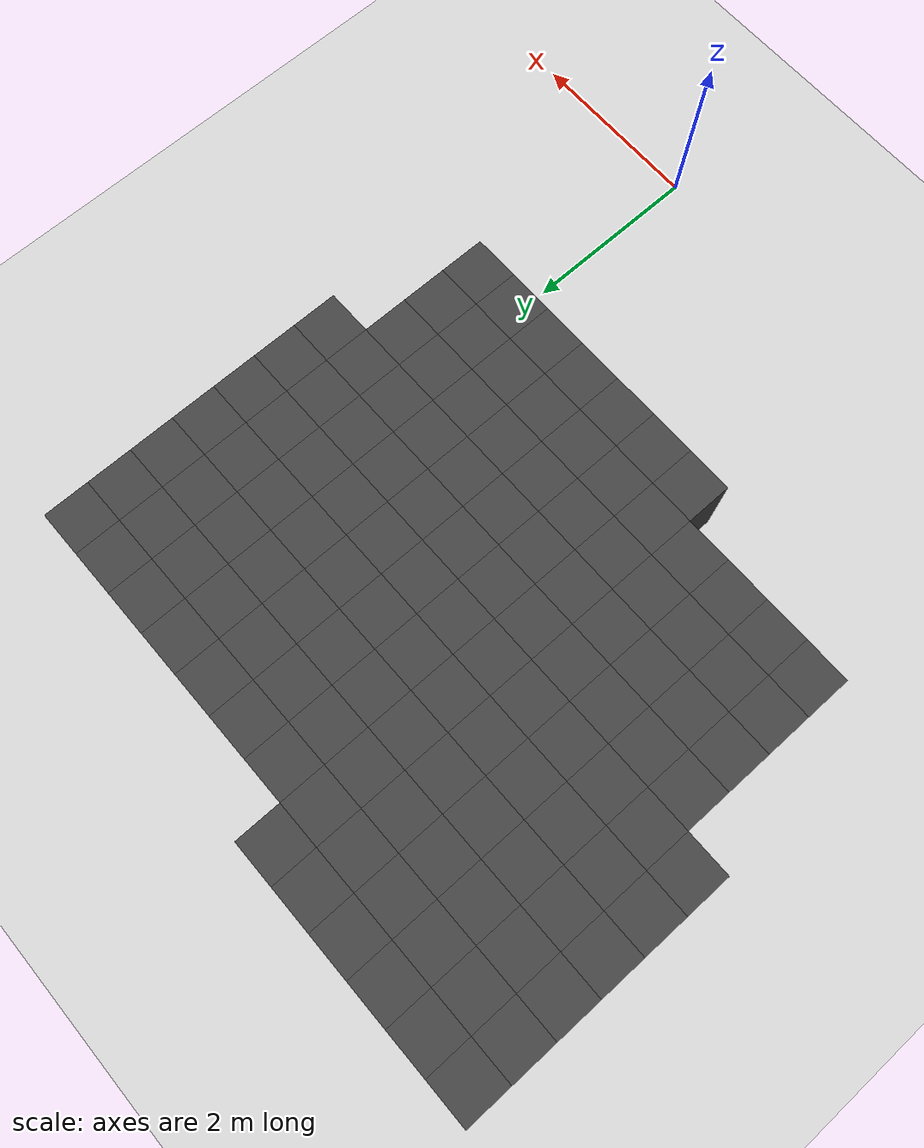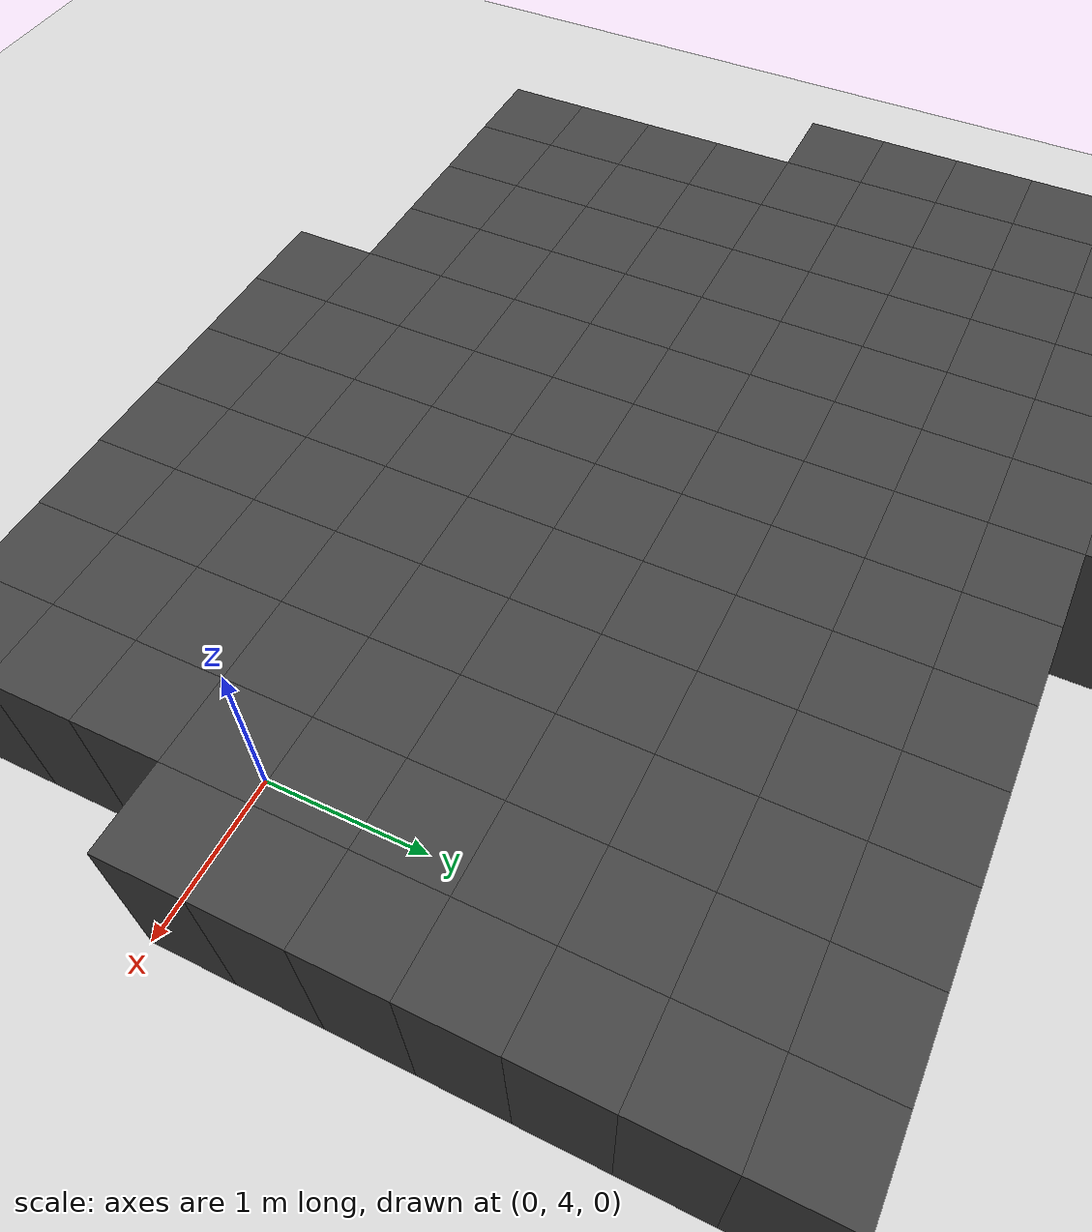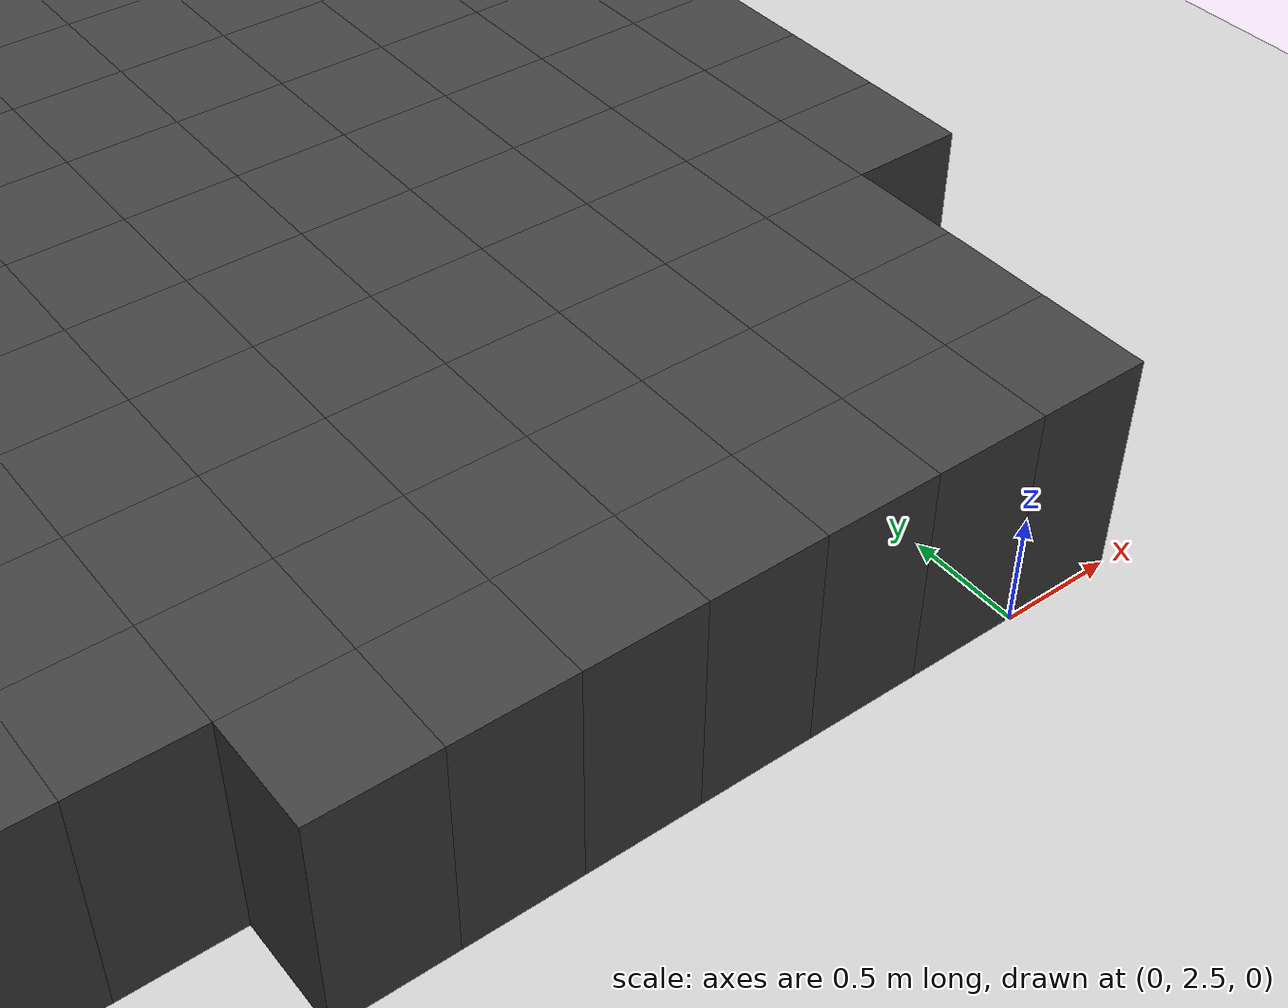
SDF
<sdf version="1.7">
 <world name="map_12818">
  <model name="ground_plane">
   <static>true</static>
   <link name="link">
    <collision name="collision">
     <geometry><plane><normal>0 0 1</normal><size>200 200</size></plane></geometry>
    </collision>
    <visual name="visual">
     <geometry><plane><normal>0 0 1</normal><size>200 200</size></plane></geometry>
     <material><ambient>0.8 0.8 0.8 1</ambient><diffuse>0.8 0.8 0.8 1</diffuse></material>
    </visual>
   </link>
  </model>
  <model name="maze_environment">
   <static>true</static>
   <link name="wall_441">
    <pose>-5.250 7.750 0.500 0 0 0</pose>
    <collision name="col"><geometry><box><size>0.5 0.5 1.0</size></box></geometry></collision>
    <visual name="vis">
     <geometry><box><size>0.5 0.5 1.0</size></box></geometry>
     <material><ambient>0.15 0.15 0.15 1</ambient><diffuse>0.25 0.25 0.25 1</diffuse></material>
    </visual>
   </link>
   <link name="wall_442">
    <pose>-4.750 7.750 0.500 0 0 0</pose>
    <collision name="col"><geometry><box><size>0.5 0.5 1.0</size></box></geometry></collision>
    <visual name="vis">
     <geometry><box><size>0.5 0.5 1.0</size></box></geometry>
     <material><ambient>0.15 0.15 0.15 1</ambient><diffuse>0.25 0.25 0.25 1</diffuse></material>
    </visual>
   </link>
   <link name="wall_443">
    <pose>-4.250 7.750 0.500 0 0 0</pose>
    <collision name="col"><geometry><box><size>0.5 0.5 1.0</size></box></geometry></collision>
    <visual name="vis">
     <geometry><box><size>0.5 0.5 1.0</size></box></geometry>
     <material><ambient>0.15 0.15 0.15 1</ambient><diffuse>0.25 0.25 0.25 1</diffuse></material>
    </visual>
   </link>
   <link name="wall_444">
    <pose>-3.750 7.750 0.500 0 0 0</pose>
    <collision name="col"><geometry><box><size>0.5 0.5 1.0</size></box></geometry></collision>
    <visual name="vis">
     <geometry><box><size>0.5 0.5 1.0</size></box></geometry>
     <material><ambient>0.15 0.15 0.15 1</ambient><diffuse>0.25 0.25 0.25 1</diffuse></material>
    </visual>
   </link>
   <link name="wall_445">
    <pose>-3.250 7.750 0.500 0 0 0</pose>
    <collision name="col"><geometry><box><size>0.5 0.5 1.0</size></box></geometry></collision>
    <visual name="vis">
     <geometry><box><size>0.5 0.5 1.0</size></box></geometry>
     <material><ambient>0.15 0.15 0.15 1</ambient><diffuse>0.25 0.25 0.25 1</diffuse></material>
    </visual>
   </link>
   <link name="wall_446">
    <pose>-2.750 7.750 0.500 0 0 0</pose>
    <collision name="col"><geometry><box><size>0.5 0.5 1.0</size></box></geometry></collision>
    <visual name="vis">
     <geometry><box><size>0.5 0.5 1.0</size></box></geometry>
     <material><ambient>0.15 0.15 0.15 1</ambient><diffuse>0.25 0.25 0.25 1</diffuse></material>
    </visual>
   </link>
   <link name="wall_482">
    <pose>-5.250 7.250 0.500 0 0 0</pose>
    <collision name="col"><geometry><box><size>0.5 0.5 1.0</size></box></geometry></collision>
    <visual name="vis">
     <geometry><box><size>0.5 0.5 1.0</size></box></geometry>
     <material><ambient>0.15 0.15 0.15 1</ambient><diffuse>0.25 0.25 0.25 1</diffuse></material>
    </visual>
   </link>
   <link name="wall_483">
    <pose>-4.750 7.250 0.500 0 0 0</pose>
    <collision name="col"><geometry><box><size>0.5 0.5 1.0</size></box></geometry></collision>
    <visual name="vis">
     <geometry><box><size>0.5 0.5 1.0</size></box></geometry>
     <material><ambient>0.15 0.15 0.15 1</ambient><diffuse>0.25 0.25 0.25 1</diffuse></material>
    </visual>
   </link>
   <link name="wall_484">
    <pose>-4.250 7.250 0.500 0 0 0</pose>
    <collision name="col"><geometry><box><size>0.5 0.5 1.0</size></box></geometry></collision>
    <visual name="vis">
     <geometry><box><size>0.5 0.5 1.0</size></box></geometry>
     <material><ambient>0.15 0.15 0.15 1</ambient><diffuse>0.25 0.25 0.25 1</diffuse></material>
    </visual>
   </link>
   <link name="wall_485">
    <pose>-3.750 7.250 0.500 0 0 0</pose>
    <collision name="col"><geometry><box><size>0.5 0.5 1.0</size></box></geometry></collision>
    <visual name="vis">
     <geometry><box><size>0.5 0.5 1.0</size></box></geometry>
     <material><ambient>0.15 0.15 0.15 1</ambient><diffuse>0.25 0.25 0.25 1</diffuse></material>
    </visual>
   </link>
   <link name="wall_486">
    <pose>-3.250 7.250 0.500 0 0 0</pose>
    <collision name="col"><geometry><box><size>0.5 0.5 1.0</size></box></geometry></collision>
    <visual name="vis">
     <geometry><box><size>0.5 0.5 1.0</size></box></geometry>
     <material><ambient>0.15 0.15 0.15 1</ambient><diffuse>0.25 0.25 0.25 1</diffuse></material>
    </visual>
   </link>
   <link name="wall_487">
    <pose>-2.750 7.250 0.500 0 0 0</pose>
    <collision name="col"><geometry><box><size>0.5 0.5 1.0</size></box></geometry></collision>
    <visual name="vis">
     <geometry><box><size>0.5 0.5 1.0</size></box></geometry>
     <material><ambient>0.15 0.15 0.15 1</ambient><diffuse>0.25 0.25 0.25 1</diffuse></material>
    </visual>
   </link>
   <link name="wall_488">
    <pose>-2.250 7.250 0.500 0 0 0</pose>
    <collision name="col"><geometry><box><size>0.5 0.5 1.0</size></box></geometry></collision>
    <visual name="vis">
     <geometry><box><size>0.5 0.5 1.0</size></box></geometry>
     <material><ambient>0.15 0.15 0.15 1</ambient><diffuse>0.25 0.25 0.25 1</diffuse></material>
    </visual>
   </link>
   <link name="wall_489">
    <pose>-1.750 7.250 0.500 0 0 0</pose>
    <collision name="col"><geometry><box><size>0.5 0.5 1.0</size></box></geometry></collision>
    <visual name="vis">
     <geometry><box><size>0.5 0.5 1.0</size></box></geometry>
     <material><ambient>0.15 0.15 0.15 1</ambient><diffuse>0.25 0.25 0.25 1</diffuse></material>
    </visual>
   </link>
   <link name="wall_490">
    <pose>-1.250 7.250 0.500 0 0 0</pose>
    <collision name="col"><geometry><box><size>0.5 0.5 1.0</size></box></geometry></collision>
    <visual name="vis">
     <geometry><box><size>0.5 0.5 1.0</size></box></geometry>
     <material><ambient>0.15 0.15 0.15 1</ambient><diffuse>0.25 0.25 0.25 1</diffuse></material>
    </visual>
   </link>
   <link name="wall_491">
    <pose>-0.750 7.250 0.500 0 0 0</pose>
    <collision name="col"><geometry><box><size>0.5 0.5 1.0</size></box></geometry></collision>
    <visual name="vis">
     <geometry><box><size>0.5 0.5 1.0</size></box></geometry>
     <material><ambient>0.15 0.15 0.15 1</ambient><diffuse>0.25 0.25 0.25 1</diffuse></material>
    </visual>
   </link>
   <link name="wall_492">
    <pose>-0.250 7.250 0.500 0 0 0</pose>
    <collision name="col"><geometry><box><size>0.5 0.5 1.0</size></box></geometry></collision>
    <visual name="vis">
     <geometry><box><size>0.5 0.5 1.0</size></box></geometry>
     <material><ambient>0.15 0.15 0.15 1</ambient><diffuse>0.25 0.25 0.25 1</diffuse></material>
    </visual>
   </link>
   <link name="wall_493">
    <pose>0.250 7.250 0.500 0 0 0</pose>
    <collision name="col"><geometry><box><size>0.5 0.5 1.0</size></box></geometry></collision>
    <visual name="vis">
     <geometry><box><size>0.5 0.5 1.0</size></box></geometry>
     <material><ambient>0.15 0.15 0.15 1</ambient><diffuse>0.25 0.25 0.25 1</diffuse></material>
    </visual>
   </link>
   <link name="wall_494">
    <pose>0.750 7.250 0.500 0 0 0</pose>
    <collision name="col"><geometry><box><size>0.5 0.5 1.0</size></box></geometry></collision>
    <visual name="vis">
     <geometry><box><size>0.5 0.5 1.0</size></box></geometry>
     <material><ambient>0.15 0.15 0.15 1</ambient><diffuse>0.25 0.25 0.25 1</diffuse></material>
    </visual>
   </link>
   <link name="wall_526">
    <pose>-5.250 6.750 0.500 0 0 0</pose>
    <collision name="col"><geometry><box><size>0.5 0.5 1.0</size></box></geometry></collision>
    <visual name="vis">
     <geometry><box><size>0.5 0.5 1.0</size></box></geometry>
     <material><ambient>0.15 0.15 0.15 1</ambient><diffuse>0.25 0.25 0.25 1</diffuse></material>
    </visual>
   </link>
   <link name="wall_527">
    <pose>-4.750 6.750 0.500 0 0 0</pose>
    <collision name="col"><geometry><box><size>0.5 0.5 1.0</size></box></geometry></collision>
    <visual name="vis">
     <geometry><box><size>0.5 0.5 1.0</size></box></geometry>
     <material><ambient>0.15 0.15 0.15 1</ambient><diffuse>0.25 0.25 0.25 1</diffuse></material>
    </visual>
   </link>
   <link name="wall_528">
    <pose>-4.250 6.750 0.500 0 0 0</pose>
    <collision name="col"><geometry><box><size>0.5 0.5 1.0</size></box></geometry></collision>
    <visual name="vis">
     <geometry><box><size>0.5 0.5 1.0</size></box></geometry>
     <material><ambient>0.15 0.15 0.15 1</ambient><diffuse>0.25 0.25 0.25 1</diffuse></material>
    </visual>
   </link>
   <link name="wall_529">
    <pose>-3.750 6.750 0.500 0 0 0</pose>
    <collision name="col"><geometry><box><size>0.5 0.5 1.0</size></box></geometry></collision>
    <visual name="vis">
     <geometry><box><size>0.5 0.5 1.0</size></box></geometry>
     <material><ambient>0.15 0.15 0.15 1</ambient><diffuse>0.25 0.25 0.25 1</diffuse></material>
    </visual>
   </link>
   <link name="wall_530">
    <pose>-3.250 6.750 0.500 0 0 0</pose>
    <collision name="col"><geometry><box><size>0.5 0.5 1.0</size></box></geometry></collision>
    <visual name="vis">
     <geometry><box><size>0.5 0.5 1.0</size></box></geometry>
     <material><ambient>0.15 0.15 0.15 1</ambient><diffuse>0.25 0.25 0.25 1</diffuse></material>
    </visual>
   </link>
   <link name="wall_531">
    <pose>-2.750 6.750 0.500 0 0 0</pose>
    <collision name="col"><geometry><box><size>0.5 0.5 1.0</size></box></geometry></collision>
    <visual name="vis">
     <geometry><box><size>0.5 0.5 1.0</size></box></geometry>
     <material><ambient>0.15 0.15 0.15 1</ambient><diffuse>0.25 0.25 0.25 1</diffuse></material>
    </visual>
   </link>
   <link name="wall_532">
    <pose>-2.250 6.750 0.500 0 0 0</pose>
    <collision name="col"><geometry><box><size>0.5 0.5 1.0</size></box></geometry></collision>
    <visual name="vis">
     <geometry><box><size>0.5 0.5 1.0</size></box></geometry>
     <material><ambient>0.15 0.15 0.15 1</ambient><diffuse>0.25 0.25 0.25 1</diffuse></material>
    </visual>
   </link>
   <link name="wall_533">
    <pose>-1.750 6.750 0.500 0 0 0</pose>
    <collision name="col"><geometry><box><size>0.5 0.5 1.0</size></box></geometry></collision>
    <visual name="vis">
     <geometry><box><size>0.5 0.5 1.0</size></box></geometry>
     <material><ambient>0.15 0.15 0.15 1</ambient><diffuse>0.25 0.25 0.25 1</diffuse></material>
    </visual>
   </link>
   <link name="wall_534">
    <pose>-1.250 6.750 0.500 0 0 0</pose>
    <collision name="col"><geometry><box><size>0.5 0.5 1.0</size></box></geometry></collision>
    <visual name="vis">
     <geometry><box><size>0.5 0.5 1.0</size></box></geometry>
     <material><ambient>0.15 0.15 0.15 1</ambient><diffuse>0.25 0.25 0.25 1</diffuse></material>
    </visual>
   </link>
   <link name="wall_535">
    <pose>-0.750 6.750 0.500 0 0 0</pose>
    <collision name="col"><geometry><box><size>0.5 0.5 1.0</size></box></geometry></collision>
    <visual name="vis">
     <geometry><box><size>0.5 0.5 1.0</size></box></geometry>
     <material><ambient>0.15 0.15 0.15 1</ambient><diffuse>0.25 0.25 0.25 1</diffuse></material>
    </visual>
   </link>
   <link name="wall_536">
    <pose>-0.250 6.750 0.500 0 0 0</pose>
    <collision name="col"><geometry><box><size>0.5 0.5 1.0</size></box></geometry></collision>
    <visual name="vis">
     <geometry><box><size>0.5 0.5 1.0</size></box></geometry>
     <material><ambient>0.15 0.15 0.15 1</ambient><diffuse>0.25 0.25 0.25 1</diffuse></material>
    </visual>
   </link>
   <link name="wall_537">
    <pose>0.250 6.750 0.500 0 0 0</pose>
    <collision name="col"><geometry><box><size>0.5 0.5 1.0</size></box></geometry></collision>
    <visual name="vis">
     <geometry><box><size>0.5 0.5 1.0</size></box></geometry>
     <material><ambient>0.15 0.15 0.15 1</ambient><diffuse>0.25 0.25 0.25 1</diffuse></material>
    </visual>
   </link>
   <link name="wall_538">
    <pose>0.750 6.750 0.500 0 0 0</pose>
    <collision name="col"><geometry><box><size>0.5 0.5 1.0</size></box></geometry></collision>
    <visual name="vis">
     <geometry><box><size>0.5 0.5 1.0</size></box></geometry>
     <material><ambient>0.15 0.15 0.15 1</ambient><diffuse>0.25 0.25 0.25 1</diffuse></material>
    </visual>
   </link>
   <link name="wall_574">
    <pose>-5.250 6.250 0.500 0 0 0</pose>
    <collision name="col"><geometry><box><size>0.5 0.5 1.0</size></box></geometry></collision>
    <visual name="vis">
     <geometry><box><size>0.5 0.5 1.0</size></box></geometry>
     <material><ambient>0.15 0.15 0.15 1</ambient><diffuse>0.25 0.25 0.25 1</diffuse></material>
    </visual>
   </link>
   <link name="wall_575">
    <pose>-4.750 6.250 0.500 0 0 0</pose>
    <collision name="col"><geometry><box><size>0.5 0.5 1.0</size></box></geometry></collision>
    <visual name="vis">
     <geometry><box><size>0.5 0.5 1.0</size></box></geometry>
     <material><ambient>0.15 0.15 0.15 1</ambient><diffuse>0.25 0.25 0.25 1</diffuse></material>
    </visual>
   </link>
   <link name="wall_576">
    <pose>-4.250 6.250 0.500 0 0 0</pose>
    <collision name="col"><geometry><box><size>0.5 0.5 1.0</size></box></geometry></collision>
    <visual name="vis">
     <geometry><box><size>0.5 0.5 1.0</size></box></geometry>
     <material><ambient>0.15 0.15 0.15 1</ambient><diffuse>0.25 0.25 0.25 1</diffuse></material>
    </visual>
   </link>
   <link name="wall_577">
    <pose>-3.750 6.250 0.500 0 0 0</pose>
    <collision name="col"><geometry><box><size>0.5 0.5 1.0</size></box></geometry></collision>
    <visual name="vis">
     <geometry><box><size>0.5 0.5 1.0</size></box></geometry>
     <material><ambient>0.15 0.15 0.15 1</ambient><diffuse>0.25 0.25 0.25 1</diffuse></material>
    </visual>
   </link>
   <link name="wall_578">
    <pose>-3.250 6.250 0.500 0 0 0</pose>
    <collision name="col"><geometry><box><size>0.5 0.5 1.0</size></box></geometry></collision>
    <visual name="vis">
     <geometry><box><size>0.5 0.5 1.0</size></box></geometry>
     <material><ambient>0.15 0.15 0.15 1</ambient><diffuse>0.25 0.25 0.25 1</diffuse></material>
    </visual>
   </link>
   <link name="wall_579">
    <pose>-2.750 6.250 0.500 0 0 0</pose>
    <collision name="col"><geometry><box><size>0.5 0.5 1.0</size></box></geometry></collision>
    <visual name="vis">
     <geometry><box><size>0.5 0.5 1.0</size></box></geometry>
     <material><ambient>0.15 0.15 0.15 1</ambient><diffuse>0.25 0.25 0.25 1</diffuse></material>
    </visual>
   </link>
   <link name="wall_580">
    <pose>-2.250 6.250 0.500 0 0 0</pose>
    <collision name="col"><geometry><box><size>0.5 0.5 1.0</size></box></geometry></collision>
    <visual name="vis">
     <geometry><box><size>0.5 0.5 1.0</size></box></geometry>
     <material><ambient>0.15 0.15 0.15 1</ambient><diffuse>0.25 0.25 0.25 1</diffuse></material>
    </visual>
   </link>
   <link name="wall_581">
    <pose>-1.750 6.250 0.500 0 0 0</pose>
    <collision name="col"><geometry><box><size>0.5 0.5 1.0</size></box></geometry></collision>
    <visual name="vis">
     <geometry><box><size>0.5 0.5 1.0</size></box></geometry>
     <material><ambient>0.15 0.15 0.15 1</ambient><diffuse>0.25 0.25 0.25 1</diffuse></material>
    </visual>
   </link>
   <link name="wall_582">
    <pose>-1.250 6.250 0.500 0 0 0</pose>
    <collision name="col"><geometry><box><size>0.5 0.5 1.0</size></box></geometry></collision>
    <visual name="vis">
     <geometry><box><size>0.5 0.5 1.0</size></box></geometry>
     <material><ambient>0.15 0.15 0.15 1</ambient><diffuse>0.25 0.25 0.25 1</diffuse></material>
    </visual>
   </link>
   <link name="wall_583">
    <pose>-0.750 6.250 0.500 0 0 0</pose>
    <collision name="col"><geometry><box><size>0.5 0.5 1.0</size></box></geometry></collision>
    <visual name="vis">
     <geometry><box><size>0.5 0.5 1.0</size></box></geometry>
     <material><ambient>0.15 0.15 0.15 1</ambient><diffuse>0.25 0.25 0.25 1</diffuse></material>
    </visual>
   </link>
   <link name="wall_584">
    <pose>-0.250 6.250 0.500 0 0 0</pose>
    <collision name="col"><geometry><box><size>0.5 0.5 1.0</size></box></geometry></collision>
    <visual name="vis">
     <geometry><box><size>0.5 0.5 1.0</size></box></geometry>
     <material><ambient>0.15 0.15 0.15 1</ambient><diffuse>0.25 0.25 0.25 1</diffuse></material>
    </visual>
   </link>
   <link name="wall_585">
    <pose>0.250 6.250 0.500 0 0 0</pose>
    <collision name="col"><geometry><box><size>0.5 0.5 1.0</size></box></geometry></collision>
    <visual name="vis">
     <geometry><box><size>0.5 0.5 1.0</size></box></geometry>
     <material><ambient>0.15 0.15 0.15 1</ambient><diffuse>0.25 0.25 0.25 1</diffuse></material>
    </visual>
   </link>
   <link name="wall_586">
    <pose>0.750 6.250 0.500 0 0 0</pose>
    <collision name="col"><geometry><box><size>0.5 0.5 1.0</size></box></geometry></collision>
    <visual name="vis">
     <geometry><box><size>0.5 0.5 1.0</size></box></geometry>
     <material><ambient>0.15 0.15 0.15 1</ambient><diffuse>0.25 0.25 0.25 1</diffuse></material>
    </visual>
   </link>
   <link name="wall_622">
    <pose>-5.250 5.750 0.500 0 0 0</pose>
    <collision name="col"><geometry><box><size>0.5 0.5 1.0</size></box></geometry></collision>
    <visual name="vis">
     <geometry><box><size>0.5 0.5 1.0</size></box></geometry>
     <material><ambient>0.15 0.15 0.15 1</ambient><diffuse>0.25 0.25 0.25 1</diffuse></material>
    </visual>
   </link>
   <link name="wall_623">
    <pose>-4.750 5.750 0.500 0 0 0</pose>
    <collision name="col"><geometry><box><size>0.5 0.5 1.0</size></box></geometry></collision>
    <visual name="vis">
     <geometry><box><size>0.5 0.5 1.0</size></box></geometry>
     <material><ambient>0.15 0.15 0.15 1</ambient><diffuse>0.25 0.25 0.25 1</diffuse></material>
    </visual>
   </link>
   <link name="wall_624">
    <pose>-4.250 5.750 0.500 0 0 0</pose>
    <collision name="col"><geometry><box><size>0.5 0.5 1.0</size></box></geometry></collision>
    <visual name="vis">
     <geometry><box><size>0.5 0.5 1.0</size></box></geometry>
     <material><ambient>0.15 0.15 0.15 1</ambient><diffuse>0.25 0.25 0.25 1</diffuse></material>
    </visual>
   </link>
   <link name="wall_625">
    <pose>-3.750 5.750 0.500 0 0 0</pose>
    <collision name="col"><geometry><box><size>0.5 0.5 1.0</size></box></geometry></collision>
    <visual name="vis">
     <geometry><box><size>0.5 0.5 1.0</size></box></geometry>
     <material><ambient>0.15 0.15 0.15 1</ambient><diffuse>0.25 0.25 0.25 1</diffuse></material>
    </visual>
   </link>
   <link name="wall_626">
    <pose>-3.250 5.750 0.500 0 0 0</pose>
    <collision name="col"><geometry><box><size>0.5 0.5 1.0</size></box></geometry></collision>
    <visual name="vis">
     <geometry><box><size>0.5 0.5 1.0</size></box></geometry>
     <material><ambient>0.15 0.15 0.15 1</ambient><diffuse>0.25 0.25 0.25 1</diffuse></material>
    </visual>
   </link>
   <link name="wall_627">
    <pose>-2.750 5.750 0.500 0 0 0</pose>
    <collision name="col"><geometry><box><size>0.5 0.5 1.0</size></box></geometry></collision>
    <visual name="vis">
     <geometry><box><size>0.5 0.5 1.0</size></box></geometry>
     <material><ambient>0.15 0.15 0.15 1</ambient><diffuse>0.25 0.25 0.25 1</diffuse></material>
    </visual>
   </link>
   <link name="wall_628">
    <pose>-2.250 5.750 0.500 0 0 0</pose>
    <collision name="col"><geometry><box><size>0.5 0.5 1.0</size></box></geometry></collision>
    <visual name="vis">
     <geometry><box><size>0.5 0.5 1.0</size></box></geometry>
     <material><ambient>0.15 0.15 0.15 1</ambient><diffuse>0.25 0.25 0.25 1</diffuse></material>
    </visual>
   </link>
   <link name="wall_629">
    <pose>-1.750 5.750 0.500 0 0 0</pose>
    <collision name="col"><geometry><box><size>0.5 0.5 1.0</size></box></geometry></collision>
    <visual name="vis">
     <geometry><box><size>0.5 0.5 1.0</size></box></geometry>
     <material><ambient>0.15 0.15 0.15 1</ambient><diffuse>0.25 0.25 0.25 1</diffuse></material>
    </visual>
   </link>
   <link name="wall_630">
    <pose>-1.250 5.750 0.500 0 0 0</pose>
    <collision name="col"><geometry><box><size>0.5 0.5 1.0</size></box></geometry></collision>
    <visual name="vis">
     <geometry><box><size>0.5 0.5 1.0</size></box></geometry>
     <material><ambient>0.15 0.15 0.15 1</ambient><diffuse>0.25 0.25 0.25 1</diffuse></material>
    </visual>
   </link>
   <link name="wall_631">
    <pose>-0.750 5.750 0.500 0 0 0</pose>
    <collision name="col"><geometry><box><size>0.5 0.5 1.0</size></box></geometry></collision>
    <visual name="vis">
     <geometry><box><size>0.5 0.5 1.0</size></box></geometry>
     <material><ambient>0.15 0.15 0.15 1</ambient><diffuse>0.25 0.25 0.25 1</diffuse></material>
    </visual>
   </link>
   <link name="wall_632">
    <pose>-0.250 5.750 0.500 0 0 0</pose>
    <collision name="col"><geometry><box><size>0.5 0.5 1.0</size></box></geometry></collision>
    <visual name="vis">
     <geometry><box><size>0.5 0.5 1.0</size></box></geometry>
     <material><ambient>0.15 0.15 0.15 1</ambient><diffuse>0.25 0.25 0.25 1</diffuse></material>
    </visual>
   </link>
   <link name="wall_633">
    <pose>0.250 5.750 0.500 0 0 0</pose>
    <collision name="col"><geometry><box><size>0.5 0.5 1.0</size></box></geometry></collision>
    <visual name="vis">
     <geometry><box><size>0.5 0.5 1.0</size></box></geometry>
     <material><ambient>0.15 0.15 0.15 1</ambient><diffuse>0.25 0.25 0.25 1</diffuse></material>
    </visual>
   </link>
   <link name="wall_634">
    <pose>0.750 5.750 0.500 0 0 0</pose>
    <collision name="col"><geometry><box><size>0.5 0.5 1.0</size></box></geometry></collision>
    <visual name="vis">
     <geometry><box><size>0.5 0.5 1.0</size></box></geometry>
     <material><ambient>0.15 0.15 0.15 1</ambient><diffuse>0.25 0.25 0.25 1</diffuse></material>
    </visual>
   </link>
   <link name="wall_670">
    <pose>-5.250 5.250 0.500 0 0 0</pose>
    <collision name="col"><geometry><box><size>0.5 0.5 1.0</size></box></geometry></collision>
    <visual name="vis">
     <geometry><box><size>0.5 0.5 1.0</size></box></geometry>
     <material><ambient>0.15 0.15 0.15 1</ambient><diffuse>0.25 0.25 0.25 1</diffuse></material>
    </visual>
   </link>
   <link name="wall_671">
    <pose>-4.750 5.250 0.500 0 0 0</pose>
    <collision name="col"><geometry><box><size>0.5 0.5 1.0</size></box></geometry></collision>
    <visual name="vis">
     <geometry><box><size>0.5 0.5 1.0</size></box></geometry>
     <material><ambient>0.15 0.15 0.15 1</ambient><diffuse>0.25 0.25 0.25 1</diffuse></material>
    </visual>
   </link>
   <link name="wall_672">
    <pose>-4.250 5.250 0.500 0 0 0</pose>
    <collision name="col"><geometry><box><size>0.5 0.5 1.0</size></box></geometry></collision>
    <visual name="vis">
     <geometry><box><size>0.5 0.5 1.0</size></box></geometry>
     <material><ambient>0.15 0.15 0.15 1</ambient><diffuse>0.25 0.25 0.25 1</diffuse></material>
    </visual>
   </link>
   <link name="wall_673">
    <pose>-3.750 5.250 0.500 0 0 0</pose>
    <collision name="col"><geometry><box><size>0.5 0.5 1.0</size></box></geometry></collision>
    <visual name="vis">
     <geometry><box><size>0.5 0.5 1.0</size></box></geometry>
     <material><ambient>0.15 0.15 0.15 1</ambient><diffuse>0.25 0.25 0.25 1</diffuse></material>
    </visual>
   </link>
   <link name="wall_674">
    <pose>-3.250 5.250 0.500 0 0 0</pose>
    <collision name="col"><geometry><box><size>0.5 0.5 1.0</size></box></geometry></collision>
    <visual name="vis">
     <geometry><box><size>0.5 0.5 1.0</size></box></geometry>
     <material><ambient>0.15 0.15 0.15 1</ambient><diffuse>0.25 0.25 0.25 1</diffuse></material>
    </visual>
   </link>
   <link name="wall_675">
    <pose>-2.750 5.250 0.500 0 0 0</pose>
    <collision name="col"><geometry><box><size>0.5 0.5 1.0</size></box></geometry></collision>
    <visual name="vis">
     <geometry><box><size>0.5 0.5 1.0</size></box></geometry>
     <material><ambient>0.15 0.15 0.15 1</ambient><diffuse>0.25 0.25 0.25 1</diffuse></material>
    </visual>
   </link>
   <link name="wall_676">
    <pose>-2.250 5.250 0.500 0 0 0</pose>
    <collision name="col"><geometry><box><size>0.5 0.5 1.0</size></box></geometry></collision>
    <visual name="vis">
     <geometry><box><size>0.5 0.5 1.0</size></box></geometry>
     <material><ambient>0.15 0.15 0.15 1</ambient><diffuse>0.25 0.25 0.25 1</diffuse></material>
    </visual>
   </link>
   <link name="wall_677">
    <pose>-1.750 5.250 0.500 0 0 0</pose>
    <collision name="col"><geometry><box><size>0.5 0.5 1.0</size></box></geometry></collision>
    <visual name="vis">
     <geometry><box><size>0.5 0.5 1.0</size></box></geometry>
     <material><ambient>0.15 0.15 0.15 1</ambient><diffuse>0.25 0.25 0.25 1</diffuse></material>
    </visual>
   </link>
   <link name="wall_678">
    <pose>-1.250 5.250 0.500 0 0 0</pose>
    <collision name="col"><geometry><box><size>0.5 0.5 1.0</size></box></geometry></collision>
    <visual name="vis">
     <geometry><box><size>0.5 0.5 1.0</size></box></geometry>
     <material><ambient>0.15 0.15 0.15 1</ambient><diffuse>0.25 0.25 0.25 1</diffuse></material>
    </visual>
   </link>
   <link name="wall_679">
    <pose>-0.750 5.250 0.500 0 0 0</pose>
    <collision name="col"><geometry><box><size>0.5 0.5 1.0</size></box></geometry></collision>
    <visual name="vis">
     <geometry><box><size>0.5 0.5 1.0</size></box></geometry>
     <material><ambient>0.15 0.15 0.15 1</ambient><diffuse>0.25 0.25 0.25 1</diffuse></material>
    </visual>
   </link>
   <link name="wall_680">
    <pose>-0.250 5.250 0.500 0 0 0</pose>
    <collision name="col"><geometry><box><size>0.5 0.5 1.0</size></box></geometry></collision>
    <visual name="vis">
     <geometry><box><size>0.5 0.5 1.0</size></box></geometry>
     <material><ambient>0.15 0.15 0.15 1</ambient><diffuse>0.25 0.25 0.25 1</diffuse></material>
    </visual>
   </link>
   <link name="wall_681">
    <pose>0.250 5.250 0.500 0 0 0</pose>
    <collision name="col"><geometry><box><size>0.5 0.5 1.0</size></box></geometry></collision>
    <visual name="vis">
     <geometry><box><size>0.5 0.5 1.0</size></box></geometry>
     <material><ambient>0.15 0.15 0.15 1</ambient><diffuse>0.25 0.25 0.25 1</diffuse></material>
    </visual>
   </link>
   <link name="wall_682">
    <pose>0.750 5.250 0.500 0 0 0</pose>
    <collision name="col"><geometry><box><size>0.5 0.5 1.0</size></box></geometry></collision>
    <visual name="vis">
     <geometry><box><size>0.5 0.5 1.0</size></box></geometry>
     <material><ambient>0.15 0.15 0.15 1</ambient><diffuse>0.25 0.25 0.25 1</diffuse></material>
    </visual>
   </link>
   <link name="wall_719">
    <pose>-4.750 4.750 0.500 0 0 0</pose>
    <collision name="col"><geometry><box><size>0.5 0.5 1.0</size></box></geometry></collision>
    <visual name="vis">
     <geometry><box><size>0.5 0.5 1.0</size></box></geometry>
     <material><ambient>0.15 0.15 0.15 1</ambient><diffuse>0.25 0.25 0.25 1</diffuse></material>
    </visual>
   </link>
   <link name="wall_720">
    <pose>-4.250 4.750 0.500 0 0 0</pose>
    <collision name="col"><geometry><box><size>0.5 0.5 1.0</size></box></geometry></collision>
    <visual name="vis">
     <geometry><box><size>0.5 0.5 1.0</size></box></geometry>
     <material><ambient>0.15 0.15 0.15 1</ambient><diffuse>0.25 0.25 0.25 1</diffuse></material>
    </visual>
   </link>
   <link name="wall_721">
    <pose>-3.750 4.750 0.500 0 0 0</pose>
    <collision name="col"><geometry><box><size>0.5 0.5 1.0</size></box></geometry></collision>
    <visual name="vis">
     <geometry><box><size>0.5 0.5 1.0</size></box></geometry>
     <material><ambient>0.15 0.15 0.15 1</ambient><diffuse>0.25 0.25 0.25 1</diffuse></material>
    </visual>
   </link>
   <link name="wall_722">
    <pose>-3.250 4.750 0.500 0 0 0</pose>
    <collision name="col"><geometry><box><size>0.5 0.5 1.0</size></box></geometry></collision>
    <visual name="vis">
     <geometry><box><size>0.5 0.5 1.0</size></box></geometry>
     <material><ambient>0.15 0.15 0.15 1</ambient><diffuse>0.25 0.25 0.25 1</diffuse></material>
    </visual>
   </link>
   <link name="wall_723">
    <pose>-2.750 4.750 0.500 0 0 0</pose>
    <collision name="col"><geometry><box><size>0.5 0.5 1.0</size></box></geometry></collision>
    <visual name="vis">
     <geometry><box><size>0.5 0.5 1.0</size></box></geometry>
     <material><ambient>0.15 0.15 0.15 1</ambient><diffuse>0.25 0.25 0.25 1</diffuse></material>
    </visual>
   </link>
   <link name="wall_724">
    <pose>-2.250 4.750 0.500 0 0 0</pose>
    <collision name="col"><geometry><box><size>0.5 0.5 1.0</size></box></geometry></collision>
    <visual name="vis">
     <geometry><box><size>0.5 0.5 1.0</size></box></geometry>
     <material><ambient>0.15 0.15 0.15 1</ambient><diffuse>0.25 0.25 0.25 1</diffuse></material>
    </visual>
   </link>
   <link name="wall_725">
    <pose>-1.750 4.750 0.500 0 0 0</pose>
    <collision name="col"><geometry><box><size>0.5 0.5 1.0</size></box></geometry></collision>
    <visual name="vis">
     <geometry><box><size>0.5 0.5 1.0</size></box></geometry>
     <material><ambient>0.15 0.15 0.15 1</ambient><diffuse>0.25 0.25 0.25 1</diffuse></material>
    </visual>
   </link>
   <link name="wall_726">
    <pose>-1.250 4.750 0.500 0 0 0</pose>
    <collision name="col"><geometry><box><size>0.5 0.5 1.0</size></box></geometry></collision>
    <visual name="vis">
     <geometry><box><size>0.5 0.5 1.0</size></box></geometry>
     <material><ambient>0.15 0.15 0.15 1</ambient><diffuse>0.25 0.25 0.25 1</diffuse></material>
    </visual>
   </link>
   <link name="wall_727">
    <pose>-0.750 4.750 0.500 0 0 0</pose>
    <collision name="col"><geometry><box><size>0.5 0.5 1.0</size></box></geometry></collision>
    <visual name="vis">
     <geometry><box><size>0.5 0.5 1.0</size></box></geometry>
     <material><ambient>0.15 0.15 0.15 1</ambient><diffuse>0.25 0.25 0.25 1</diffuse></material>
    </visual>
   </link>
   <link name="wall_728">
    <pose>-0.250 4.750 0.500 0 0 0</pose>
    <collision name="col"><geometry><box><size>0.5 0.5 1.0</size></box></geometry></collision>
    <visual name="vis">
     <geometry><box><size>0.5 0.5 1.0</size></box></geometry>
     <material><ambient>0.15 0.15 0.15 1</ambient><diffuse>0.25 0.25 0.25 1</diffuse></material>
    </visual>
   </link>
   <link name="wall_729">
    <pose>0.250 4.750 0.500 0 0 0</pose>
    <collision name="col"><geometry><box><size>0.5 0.5 1.0</size></box></geometry></collision>
    <visual name="vis">
     <geometry><box><size>0.5 0.5 1.0</size></box></geometry>
     <material><ambient>0.15 0.15 0.15 1</ambient><diffuse>0.25 0.25 0.25 1</diffuse></material>
    </visual>
   </link>
   <link name="wall_730">
    <pose>0.750 4.750 0.500 0 0 0</pose>
    <collision name="col"><geometry><box><size>0.5 0.5 1.0</size></box></geometry></collision>
    <visual name="vis">
     <geometry><box><size>0.5 0.5 1.0</size></box></geometry>
     <material><ambient>0.15 0.15 0.15 1</ambient><diffuse>0.25 0.25 0.25 1</diffuse></material>
    </visual>
   </link>
   <link name="wall_767">
    <pose>-4.750 4.250 0.500 0 0 0</pose>
    <collision name="col"><geometry><box><size>0.5 0.5 1.0</size></box></geometry></collision>
    <visual name="vis">
     <geometry><box><size>0.5 0.5 1.0</size></box></geometry>
     <material><ambient>0.15 0.15 0.15 1</ambient><diffuse>0.25 0.25 0.25 1</diffuse></material>
    </visual>
   </link>
   <link name="wall_768">
    <pose>-4.250 4.250 0.500 0 0 0</pose>
    <collision name="col"><geometry><box><size>0.5 0.5 1.0</size></box></geometry></collision>
    <visual name="vis">
     <geometry><box><size>0.5 0.5 1.0</size></box></geometry>
     <material><ambient>0.15 0.15 0.15 1</ambient><diffuse>0.25 0.25 0.25 1</diffuse></material>
    </visual>
   </link>
   <link name="wall_769">
    <pose>-3.750 4.250 0.500 0 0 0</pose>
    <collision name="col"><geometry><box><size>0.5 0.5 1.0</size></box></geometry></collision>
    <visual name="vis">
     <geometry><box><size>0.5 0.5 1.0</size></box></geometry>
     <material><ambient>0.15 0.15 0.15 1</ambient><diffuse>0.25 0.25 0.25 1</diffuse></material>
    </visual>
   </link>
   <link name="wall_770">
    <pose>-3.250 4.250 0.500 0 0 0</pose>
    <collision name="col"><geometry><box><size>0.5 0.5 1.0</size></box></geometry></collision>
    <visual name="vis">
     <geometry><box><size>0.5 0.5 1.0</size></box></geometry>
     <material><ambient>0.15 0.15 0.15 1</ambient><diffuse>0.25 0.25 0.25 1</diffuse></material>
    </visual>
   </link>
   <link name="wall_771">
    <pose>-2.750 4.250 0.500 0 0 0</pose>
    <collision name="col"><geometry><box><size>0.5 0.5 1.0</size></box></geometry></collision>
    <visual name="vis">
     <geometry><box><size>0.5 0.5 1.0</size></box></geometry>
     <material><ambient>0.15 0.15 0.15 1</ambient><diffuse>0.25 0.25 0.25 1</diffuse></material>
    </visual>
   </link>
   <link name="wall_772">
    <pose>-2.250 4.250 0.500 0 0 0</pose>
    <collision name="col"><geometry><box><size>0.5 0.5 1.0</size></box></geometry></collision>
    <visual name="vis">
     <geometry><box><size>0.5 0.5 1.0</size></box></geometry>
     <material><ambient>0.15 0.15 0.15 1</ambient><diffuse>0.25 0.25 0.25 1</diffuse></material>
    </visual>
   </link>
   <link name="wall_773">
    <pose>-1.750 4.250 0.500 0 0 0</pose>
    <collision name="col"><geometry><box><size>0.5 0.5 1.0</size></box></geometry></collision>
    <visual name="vis">
     <geometry><box><size>0.5 0.5 1.0</size></box></geometry>
     <material><ambient>0.15 0.15 0.15 1</ambient><diffuse>0.25 0.25 0.25 1</diffuse></material>
    </visual>
   </link>
   <link name="wall_774">
    <pose>-1.250 4.250 0.500 0 0 0</pose>
    <collision name="col"><geometry><box><size>0.5 0.5 1.0</size></box></geometry></collision>
    <visual name="vis">
     <geometry><box><size>0.5 0.5 1.0</size></box></geometry>
     <material><ambient>0.15 0.15 0.15 1</ambient><diffuse>0.25 0.25 0.25 1</diffuse></material>
    </visual>
   </link>
   <link name="wall_775">
    <pose>-0.750 4.250 0.500 0 0 0</pose>
    <collision name="col"><geometry><box><size>0.5 0.5 1.0</size></box></geometry></collision>
    <visual name="vis">
     <geometry><box><size>0.5 0.5 1.0</size></box></geometry>
     <material><ambient>0.15 0.15 0.15 1</ambient><diffuse>0.25 0.25 0.25 1</diffuse></material>
    </visual>
   </link>
   <link name="wall_776">
    <pose>-0.250 4.250 0.500 0 0 0</pose>
    <collision name="col"><geometry><box><size>0.5 0.5 1.0</size></box></geometry></collision>
    <visual name="vis">
     <geometry><box><size>0.5 0.5 1.0</size></box></geometry>
     <material><ambient>0.15 0.15 0.15 1</ambient><diffuse>0.25 0.25 0.25 1</diffuse></material>
    </visual>
   </link>
   <link name="wall_777">
    <pose>0.250 4.250 0.500 0 0 0</pose>
    <collision name="col"><geometry><box><size>0.5 0.5 1.0</size></box></geometry></collision>
    <visual name="vis">
     <geometry><box><size>0.5 0.5 1.0</size></box></geometry>
     <material><ambient>0.15 0.15 0.15 1</ambient><diffuse>0.25 0.25 0.25 1</diffuse></material>
    </visual>
   </link>
   <link name="wall_778">
    <pose>0.750 4.250 0.500 0 0 0</pose>
    <collision name="col"><geometry><box><size>0.5 0.5 1.0</size></box></geometry></collision>
    <visual name="vis">
     <geometry><box><size>0.5 0.5 1.0</size></box></geometry>
     <material><ambient>0.15 0.15 0.15 1</ambient><diffuse>0.25 0.25 0.25 1</diffuse></material>
    </visual>
   </link>
   <link name="wall_815">
    <pose>-4.750 3.750 0.500 0 0 0</pose>
    <collision name="col"><geometry><box><size>0.5 0.5 1.0</size></box></geometry></collision>
    <visual name="vis">
     <geometry><box><size>0.5 0.5 1.0</size></box></geometry>
     <material><ambient>0.15 0.15 0.15 1</ambient><diffuse>0.25 0.25 0.25 1</diffuse></material>
    </visual>
   </link>
   <link name="wall_816">
    <pose>-4.250 3.750 0.500 0 0 0</pose>
    <collision name="col"><geometry><box><size>0.5 0.5 1.0</size></box></geometry></collision>
    <visual name="vis">
     <geometry><box><size>0.5 0.5 1.0</size></box></geometry>
     <material><ambient>0.15 0.15 0.15 1</ambient><diffuse>0.25 0.25 0.25 1</diffuse></material>
    </visual>
   </link>
   <link name="wall_817">
    <pose>-3.750 3.750 0.500 0 0 0</pose>
    <collision name="col"><geometry><box><size>0.5 0.5 1.0</size></box></geometry></collision>
    <visual name="vis">
     <geometry><box><size>0.5 0.5 1.0</size></box></geometry>
     <material><ambient>0.15 0.15 0.15 1</ambient><diffuse>0.25 0.25 0.25 1</diffuse></material>
    </visual>
   </link>
   <link name="wall_818">
    <pose>-3.250 3.750 0.500 0 0 0</pose>
    <collision name="col"><geometry><box><size>0.5 0.5 1.0</size></box></geometry></collision>
    <visual name="vis">
     <geometry><box><size>0.5 0.5 1.0</size></box></geometry>
     <material><ambient>0.15 0.15 0.15 1</ambient><diffuse>0.25 0.25 0.25 1</diffuse></material>
    </visual>
   </link>
   <link name="wall_819">
    <pose>-2.750 3.750 0.500 0 0 0</pose>
    <collision name="col"><geometry><box><size>0.5 0.5 1.0</size></box></geometry></collision>
    <visual name="vis">
     <geometry><box><size>0.5 0.5 1.0</size></box></geometry>
     <material><ambient>0.15 0.15 0.15 1</ambient><diffuse>0.25 0.25 0.25 1</diffuse></material>
    </visual>
   </link>
   <link name="wall_820">
    <pose>-2.250 3.750 0.500 0 0 0</pose>
    <collision name="col"><geometry><box><size>0.5 0.5 1.0</size></box></geometry></collision>
    <visual name="vis">
     <geometry><box><size>0.5 0.5 1.0</size></box></geometry>
     <material><ambient>0.15 0.15 0.15 1</ambient><diffuse>0.25 0.25 0.25 1</diffuse></material>
    </visual>
   </link>
   <link name="wall_821">
    <pose>-1.750 3.750 0.500 0 0 0</pose>
    <collision name="col"><geometry><box><size>0.5 0.5 1.0</size></box></geometry></collision>
    <visual name="vis">
     <geometry><box><size>0.5 0.5 1.0</size></box></geometry>
     <material><ambient>0.15 0.15 0.15 1</ambient><diffuse>0.25 0.25 0.25 1</diffuse></material>
    </visual>
   </link>
   <link name="wall_822">
    <pose>-1.250 3.750 0.500 0 0 0</pose>
    <collision name="col"><geometry><box><size>0.5 0.5 1.0</size></box></geometry></collision>
    <visual name="vis">
     <geometry><box><size>0.5 0.5 1.0</size></box></geometry>
     <material><ambient>0.15 0.15 0.15 1</ambient><diffuse>0.25 0.25 0.25 1</diffuse></material>
    </visual>
   </link>
   <link name="wall_823">
    <pose>-0.750 3.750 0.500 0 0 0</pose>
    <collision name="col"><geometry><box><size>0.5 0.5 1.0</size></box></geometry></collision>
    <visual name="vis">
     <geometry><box><size>0.5 0.5 1.0</size></box></geometry>
     <material><ambient>0.15 0.15 0.15 1</ambient><diffuse>0.25 0.25 0.25 1</diffuse></material>
    </visual>
   </link>
   <link name="wall_824">
    <pose>-0.250 3.750 0.500 0 0 0</pose>
    <collision name="col"><geometry><box><size>0.5 0.5 1.0</size></box></geometry></collision>
    <visual name="vis">
     <geometry><box><size>0.5 0.5 1.0</size></box></geometry>
     <material><ambient>0.15 0.15 0.15 1</ambient><diffuse>0.25 0.25 0.25 1</diffuse></material>
    </visual>
   </link>
   <link name="wall_825">
    <pose>0.250 3.750 0.500 0 0 0</pose>
    <collision name="col"><geometry><box><size>0.5 0.5 1.0</size></box></geometry></collision>
    <visual name="vis">
     <geometry><box><size>0.5 0.5 1.0</size></box></geometry>
     <material><ambient>0.15 0.15 0.15 1</ambient><diffuse>0.25 0.25 0.25 1</diffuse></material>
    </visual>
   </link>
   <link name="wall_856">
    <pose>-4.750 3.250 0.500 0 0 0</pose>
    <collision name="col"><geometry><box><size>0.5 0.5 1.0</size></box></geometry></collision>
    <visual name="vis">
     <geometry><box><size>0.5 0.5 1.0</size></box></geometry>
     <material><ambient>0.15 0.15 0.15 1</ambient><diffuse>0.25 0.25 0.25 1</diffuse></material>
    </visual>
   </link>
   <link name="wall_857">
    <pose>-4.250 3.250 0.500 0 0 0</pose>
    <collision name="col"><geometry><box><size>0.5 0.5 1.0</size></box></geometry></collision>
    <visual name="vis">
     <geometry><box><size>0.5 0.5 1.0</size></box></geometry>
     <material><ambient>0.15 0.15 0.15 1</ambient><diffuse>0.25 0.25 0.25 1</diffuse></material>
    </visual>
   </link>
   <link name="wall_858">
    <pose>-3.750 3.250 0.500 0 0 0</pose>
    <collision name="col"><geometry><box><size>0.5 0.5 1.0</size></box></geometry></collision>
    <visual name="vis">
     <geometry><box><size>0.5 0.5 1.0</size></box></geometry>
     <material><ambient>0.15 0.15 0.15 1</ambient><diffuse>0.25 0.25 0.25 1</diffuse></material>
    </visual>
   </link>
   <link name="wall_859">
    <pose>-3.250 3.250 0.500 0 0 0</pose>
    <collision name="col"><geometry><box><size>0.5 0.5 1.0</size></box></geometry></collision>
    <visual name="vis">
     <geometry><box><size>0.5 0.5 1.0</size></box></geometry>
     <material><ambient>0.15 0.15 0.15 1</ambient><diffuse>0.25 0.25 0.25 1</diffuse></material>
    </visual>
   </link>
   <link name="wall_860">
    <pose>-2.750 3.250 0.500 0 0 0</pose>
    <collision name="col"><geometry><box><size>0.5 0.5 1.0</size></box></geometry></collision>
    <visual name="vis">
     <geometry><box><size>0.5 0.5 1.0</size></box></geometry>
     <material><ambient>0.15 0.15 0.15 1</ambient><diffuse>0.25 0.25 0.25 1</diffuse></material>
    </visual>
   </link>
   <link name="wall_861">
    <pose>-2.250 3.250 0.500 0 0 0</pose>
    <collision name="col"><geometry><box><size>0.5 0.5 1.0</size></box></geometry></collision>
    <visual name="vis">
     <geometry><box><size>0.5 0.5 1.0</size></box></geometry>
     <material><ambient>0.15 0.15 0.15 1</ambient><diffuse>0.25 0.25 0.25 1</diffuse></material>
    </visual>
   </link>
   <link name="wall_862">
    <pose>-1.750 3.250 0.500 0 0 0</pose>
    <collision name="col"><geometry><box><size>0.5 0.5 1.0</size></box></geometry></collision>
    <visual name="vis">
     <geometry><box><size>0.5 0.5 1.0</size></box></geometry>
     <material><ambient>0.15 0.15 0.15 1</ambient><diffuse>0.25 0.25 0.25 1</diffuse></material>
    </visual>
   </link>
   <link name="wall_863">
    <pose>-1.250 3.250 0.500 0 0 0</pose>
    <collision name="col"><geometry><box><size>0.5 0.5 1.0</size></box></geometry></collision>
    <visual name="vis">
     <geometry><box><size>0.5 0.5 1.0</size></box></geometry>
     <material><ambient>0.15 0.15 0.15 1</ambient><diffuse>0.25 0.25 0.25 1</diffuse></material>
    </visual>
   </link>
   <link name="wall_864">
    <pose>-0.750 3.250 0.500 0 0 0</pose>
    <collision name="col"><geometry><box><size>0.5 0.5 1.0</size></box></geometry></collision>
    <visual name="vis">
     <geometry><box><size>0.5 0.5 1.0</size></box></geometry>
     <material><ambient>0.15 0.15 0.15 1</ambient><diffuse>0.25 0.25 0.25 1</diffuse></material>
    </visual>
   </link>
   <link name="wall_865">
    <pose>-0.250 3.250 0.500 0 0 0</pose>
    <collision name="col"><geometry><box><size>0.5 0.5 1.0</size></box></geometry></collision>
    <visual name="vis">
     <geometry><box><size>0.5 0.5 1.0</size></box></geometry>
     <material><ambient>0.15 0.15 0.15 1</ambient><diffuse>0.25 0.25 0.25 1</diffuse></material>
    </visual>
   </link>
   <link name="wall_866">
    <pose>0.250 3.250 0.500 0 0 0</pose>
    <collision name="col"><geometry><box><size>0.5 0.5 1.0</size></box></geometry></collision>
    <visual name="vis">
     <geometry><box><size>0.5 0.5 1.0</size></box></geometry>
     <material><ambient>0.15 0.15 0.15 1</ambient><diffuse>0.25 0.25 0.25 1</diffuse></material>
    </visual>
   </link>
   <link name="wall_901">
    <pose>-2.750 2.750 0.500 0 0 0</pose>
    <collision name="col"><geometry><box><size>0.5 0.5 1.0</size></box></geometry></collision>
    <visual name="vis">
     <geometry><box><size>0.5 0.5 1.0</size></box></geometry>
     <material><ambient>0.15 0.15 0.15 1</ambient><diffuse>0.25 0.25 0.25 1</diffuse></material>
    </visual>
   </link>
   <link name="wall_902">
    <pose>-2.250 2.750 0.500 0 0 0</pose>
    <collision name="col"><geometry><box><size>0.5 0.5 1.0</size></box></geometry></collision>
    <visual name="vis">
     <geometry><box><size>0.5 0.5 1.0</size></box></geometry>
     <material><ambient>0.15 0.15 0.15 1</ambient><diffuse>0.25 0.25 0.25 1</diffuse></material>
    </visual>
   </link>
   <link name="wall_903">
    <pose>-1.750 2.750 0.500 0 0 0</pose>
    <collision name="col"><geometry><box><size>0.5 0.5 1.0</size></box></geometry></collision>
    <visual name="vis">
     <geometry><box><size>0.5 0.5 1.0</size></box></geometry>
     <material><ambient>0.15 0.15 0.15 1</ambient><diffuse>0.25 0.25 0.25 1</diffuse></material>
    </visual>
   </link>
   <link name="wall_904">
    <pose>-1.250 2.750 0.500 0 0 0</pose>
    <collision name="col"><geometry><box><size>0.5 0.5 1.0</size></box></geometry></collision>
    <visual name="vis">
     <geometry><box><size>0.5 0.5 1.0</size></box></geometry>
     <material><ambient>0.15 0.15 0.15 1</ambient><diffuse>0.25 0.25 0.25 1</diffuse></material>
    </visual>
   </link>
   <link name="wall_905">
    <pose>-0.750 2.750 0.500 0 0 0</pose>
    <collision name="col"><geometry><box><size>0.5 0.5 1.0</size></box></geometry></collision>
    <visual name="vis">
     <geometry><box><size>0.5 0.5 1.0</size></box></geometry>
     <material><ambient>0.15 0.15 0.15 1</ambient><diffuse>0.25 0.25 0.25 1</diffuse></material>
    </visual>
   </link>
   <link name="wall_906">
    <pose>-0.250 2.750 0.500 0 0 0</pose>
    <collision name="col"><geometry><box><size>0.5 0.5 1.0</size></box></geometry></collision>
    <visual name="vis">
     <geometry><box><size>0.5 0.5 1.0</size></box></geometry>
     <material><ambient>0.15 0.15 0.15 1</ambient><diffuse>0.25 0.25 0.25 1</diffuse></material>
    </visual>
   </link>
   <link name="wall_907">
    <pose>0.250 2.750 0.500 0 0 0</pose>
    <collision name="col"><geometry><box><size>0.5 0.5 1.0</size></box></geometry></collision>
    <visual name="vis">
     <geometry><box><size>0.5 0.5 1.0</size></box></geometry>
     <material><ambient>0.15 0.15 0.15 1</ambient><diffuse>0.25 0.25 0.25 1</diffuse></material>
    </visual>
   </link>
  </model>
 </world>
</sdf>
